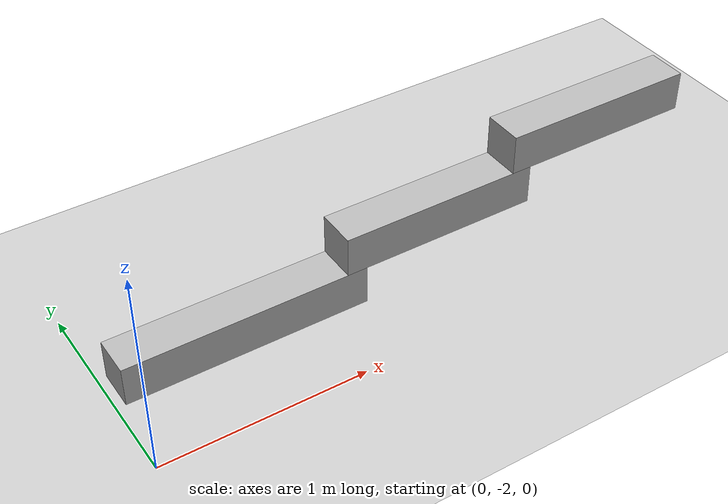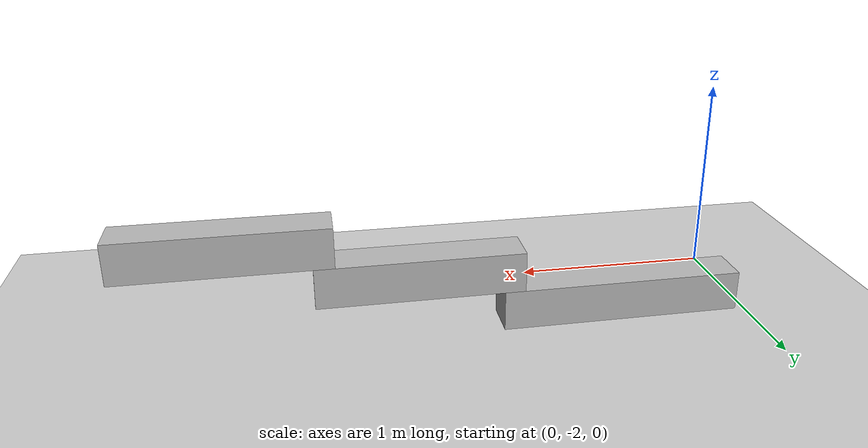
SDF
<sdf version="1.6">
 <world name="default">
  <plugin name="hello_world" filename="libhello_world.so"/>
  <light name="sun" type="directional">
   <pose>0 0 10 0 -0 0</pose>
   <diffuse>0.8 0.8 0.8 1</diffuse>
   <specular>0.1 0.1 0.1 1</specular>
   <attenuation>
    <range>1000</range>
    <constant>0.9</constant>
    <linear>0.01</linear>
    <quadratic>0.001</quadratic>
   </attenuation>
   <direction>-0.5 0.5 -1</direction>
  </light>
  <model name="ground_plane">
   <static>1</static>
   <link name="link">
    <collision name="collision">
     <geometry><plane><normal>0 0 1</normal><size>100 100</size></plane></geometry>
     <surface><friction><ode><mu>100</mu><mu2>50</mu2></ode></friction></surface>
    </collision>
    <visual name="visual">
     <cast_shadows>0</cast_shadows>
     <geometry><plane><normal>0 0 1</normal><size>100 100</size></plane></geometry>
     <material>
      <script><uri>file://media/materials/scripts/gazebo.material</uri><name>Gazebo/Grey</name></script>
     </material>
    </visual>
   </link>
  </model>
  <gravity>0 0 -9.8</gravity>
  <magnetic_field>6e-06 2.3e-05 -4.2e-05</magnetic_field>
  <atmosphere type="adiabatic"/>
  <physics name="default_physics" default="0" type="ode">
   <max_step_size>0.001</max_step_size>
   <real_time_factor>1</real_time_factor>
   <real_time_update_rate>1000</real_time_update_rate>
  </physics>
  <scene><ambient>0.4 0.4 0.4 1</ambient><background>0.7 0.7 0.7 1</background><shadows>1</shadows></scene>
  <spherical_coordinates>
   <surface_model>EARTH_WGS84</surface_model>
   <latitude_deg>0</latitude_deg>
   <longitude_deg>0</longitude_deg>
   <elevation>0</elevation>
   <heading_deg>0</heading_deg>
  </spherical_coordinates>
  <model name="rrhorizontal_11">
   <static>0</static>
   <joint name="fixed" type="fixed"><parent>world</parent><child>base_link</child></joint>
   <link name="base_link">
    <pose>0 0 0.1 0 -0 0</pose>
    <collision name="collision"><geometry><box><size>1.2 0.2 0.2</size></box></geometry></collision>
    <visual name="visual"><geometry><box><size>1.2 0.2 0.2</size></box></geometry></visual>
    <inertial>
     <inertia><ixx>1</ixx><ixy>0</ixy><ixz>0</ixz><iyy>1</iyy><iyz>0</iyz><izz>1</izz></inertia>
     <mass>1</mass>
    </inertial>
   </link>
   <joint name="joint1" type="revolute">
    <pose>-0.45 0 0 0 -0 0</pose>
    <child>link1</child>
    <parent>base_link</parent>
    <axis>
     <xyz>0 0 1</xyz>
     <dynamics><spring_reference>0.1</spring_reference><spring_stiffness>100</spring_stiffness></dynamics>
     <use_parent_model_frame>0</use_parent_model_frame>
     <limit><lower>-1e+16</lower><upper>1e+16</upper></limit>
    </axis>
   </joint>
   <link name="link1">
    <pose>1 0 0.3 0 -0 0</pose>
    <collision name="collision"><geometry><box><size>1 0.2 0.2</size></box></geometry></collision>
    <visual name="visual"><geometry><box><size>1 0.2 0.2</size></box></geometry></visual>
    <inertial>
     <mass>1</mass>
     <inertia><ixx>1</ixx><ixy>0</ixy><ixz>0</ixz><iyy>1</iyy><iyz>0</iyz><izz>1</izz></inertia>
    </inertial>
   </link>
   <joint name="joint2" type="revolute">
    <pose>-0.45 0 0 0 -0 0</pose>
    <child>link2</child>
    <parent>link1</parent>
    <axis>
     <xyz>0 0 1</xyz>
     <dynamics><spring_reference>0.1</spring_reference><spring_stiffness>100</spring_stiffness></dynamics>
     <use_parent_model_frame>0</use_parent_model_frame>
     <limit><lower>-1e+16</lower><upper>1e+16</upper></limit>
    </axis>
   </joint>
   <link name="link2">
    <pose>1.9 0 0.5 0 -0 0</pose>
    <collision name="collision"><geometry><box><size>1 0.2 0.2</size></box></geometry></collision>
    <visual name="visual"><geometry><box><size>1 0.2 0.2</size></box></geometry></visual>
    <inertial>
     <mass>1</mass>
     <inertia><ixx>1</ixx><ixy>0</ixy><ixz>0</ixz><iyy>1</iyy><iyz>0</iyz><izz>1</izz></inertia>
    </inertial>
   </link>
   <pose>0.644526 -1.51898 0 0 -0 0</pose>
  </model>
 </world>
</sdf>
